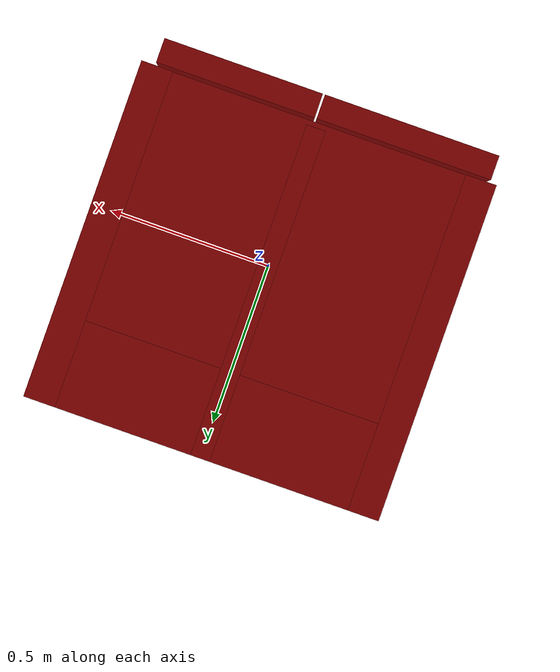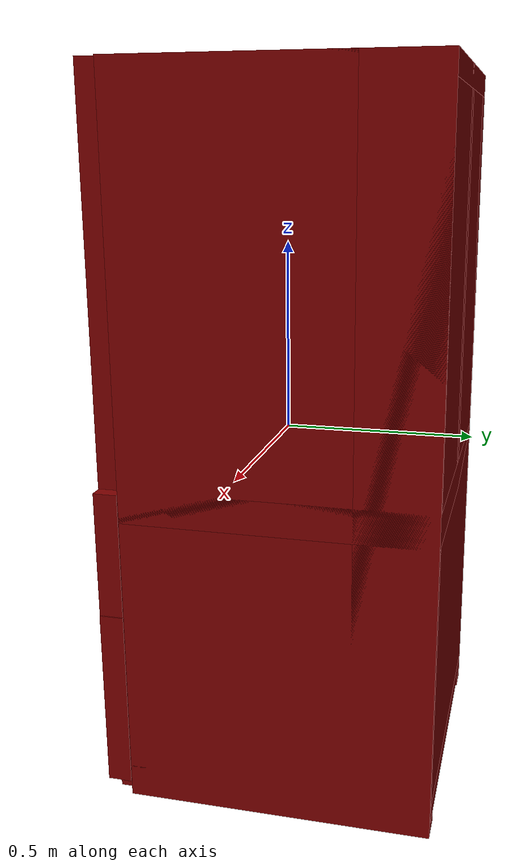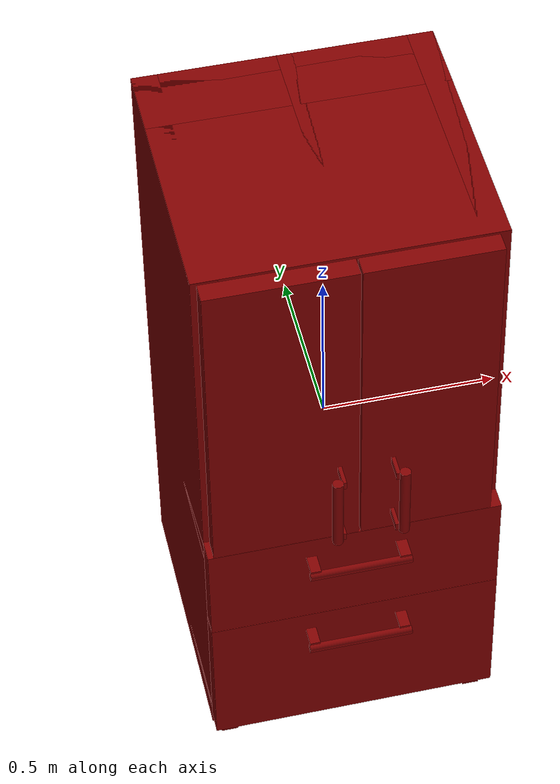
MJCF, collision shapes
<mujoco model="model">
  <compiler angle="radian"/>
  <asset>
    <mesh file="visuals/Body001.obj" name="Body001_vis"/>
    <mesh file="visuals/Body001_Clear.obj" name="Body001_Clear_vis"/>
    <mesh file="visuals/Door001.obj" name="Door001_vis"/>
    <mesh file="visuals/Door001_Clear.obj" name="Door001_Clear_vis"/>
    <mesh file="visuals/Door002.obj" name="Door002_vis"/>
    <mesh file="visuals/Door002_Clear.obj" name="Door002_Clear_vis"/>
    <mesh file="visuals/Drawer001.obj" name="Drawer001_vis"/>
    <mesh file="visuals/Drawer002.obj" name="Drawer002_vis"/>
    <texture file="visuals/T_BC001.png" name="Body001_material" type="2d"/>
    <material name="Body001_material" rgba="1 1 1 1.0" texture="Body001_material" shininess="0.141421377658844" specular="1"/>
    <texture file="visuals/T_BC001.png" name="Body001_Clear_material" type="2d"/>
    <material name="Body001_Clear_material" rgba="1 1 1 0.20258620381355286" texture="Body001_Clear_material" shininess="0.141421377658844" specular="0.3103448502657381"/>
    <texture file="visuals/T_BC001.png" name="Door001_material" type="2d"/>
    <material name="Door001_material" rgba="1 1 1 1.0" texture="Door001_material" shininess="0.141421377658844" specular="1"/>
    <texture file="visuals/T_BC001.png" name="Door001_Clear_material" type="2d"/>
    <material name="Door001_Clear_material" rgba="1 1 1 0.20258620381355286" texture="Door001_Clear_material" shininess="0.141421377658844" specular="0.3103448502657381"/>
    <texture file="visuals/T_BC001.png" name="Door002_material" type="2d"/>
    <material name="Door002_material" rgba="1 1 1 1.0" texture="Door002_material" shininess="0.141421377658844" specular="1"/>
    <texture file="visuals/T_BC001.png" name="Door002_Clear_material" type="2d"/>
    <material name="Door002_Clear_material" rgba="1 1 1 0.20258620381355286" texture="Door002_Clear_material" shininess="0.141421377658844" specular="0.3103448502657381"/>
    <texture file="visuals/T_BC001.png" name="Drawer001_material" type="2d"/>
    <material name="Drawer001_material" rgba="1 1 1 1.0" texture="Drawer001_material" shininess="0.141421377658844" specular="1"/>
    <texture file="visuals/T_BC001.png" name="Drawer002_material" type="2d"/>
    <material name="Drawer002_material" rgba="1 1 1 1.0" texture="Drawer002_material" shininess="0.141421377658844" specular="1"/>
  </asset>
  <default>
    <default class="visual">
      <geom conaffinity="0" contype="0" group="1" type="mesh"/>
    </default>
    <default class="collision">
      <geom group="0" rgba="0.5 0 0 0.5"/>
    </default>
    <default class="spawn">
      <geom group="0" rgba="1 1 1 0.5" contype="0" conaffinity="0"/>
      <site group="0" rgba="1 1 1 0.5"/>
    </default>
    <default class="region">
      <geom group="1" conaffinity="0" contype="0" rgba="0 1 0 0"/>
    </default>
  </default>
  <worldbody>
    <body>
      <body name="object">
        <geom mesh="Body001_vis" type="mesh" solimp="0.998 0.998 0.001" solref="0.001 1" density="100" friction="0.95 0.3 0.1" class="visual" material="Body001_material"/>
        <geom class="collision" type="box" pos="3.725290298461914e-08 0.36271440982818604 0.03870001435279846" size="0.420244961977005 0.10254697501659393 0.8938395977020264" quat="1.0 0.0 0.0 0.0"/>
        <geom class="collision" type="box" pos="-0.383768230676651 0.06786757707595825 5.960464477539063e-08" size="0.3973938226699829 0.03647679090499878 0.9325395822525024" quat="0.7071067094802856 0.0 0.0 0.7071068286895752"/>
        <geom class="collision" type="box" pos="2.421438694000244e-08 0.06850025057792664 0.903540849685669" size="0.420244961977005 0.3967611789703369 0.02899870276451111" quat="1.0 0.0 0.0 0.0"/>
        <geom class="collision" type="box" pos="0.38314831256866455 0.06786757707595825 5.960464477539063e-08" size="0.3973938226699829 0.03709670901298523 0.9325395822525024" quat="0.7071067094802856 0.0 0.0 0.7071068286895752"/>
        <geom class="collision" type="box" pos="2.421438694000244e-08 0.06850025057792664 -0.11745168268680573" size="0.420244961977005 0.3967611789703369 0.043764565140008926" quat="1.0 0.0 0.0 0.0"/>
        <geom class="collision" type="box" pos="0.002647663466632366 0.07413184642791748 0.4130184054374695" size="0.3911295533180237 0.022384162992239 0.5195212364196777" quat="0.7071067094802856 0.0 0.0 0.7071068286895752"/>
        <geom class="collision" type="box" pos="2.421438694000244e-08 0.06850025057792664 -0.8751527070999146" size="0.420244961977005 0.3967611789703369 0.028090566396713257" quat="1.0 0.0 0.0 0.0"/>
        <geom class="collision" type="box" pos="0.32959818840026855 -0.020736010745167732 0.5447321534156799" size="0.012320316396653652 0.25215694308280945 0.009214059449732304" quat="1.0 0.0 0.0 0.0"/>
        <geom class="collision" type="box" pos="0.03773929178714752 -0.020736010745167732 0.5447321534156799" size="0.012320316396653652 0.25215694308280945 0.009214059449732304" quat="1.0 0.0 0.0 0.0"/>
        <geom class="collision" type="box" pos="-0.03266625851392746 -0.020736010745167732 0.5447321534156799" size="0.012320316396653652 0.25215694308280945 0.009214059449732304" quat="1.0 0.0 0.0 0.0"/>
        <geom class="collision" type="box" pos="-0.3379121422767639 -0.020736010745167732 0.5447321534156799" size="0.012320316396653652 0.25215694308280945 0.009214059449732304" quat="1.0 0.0 0.0 0.0"/>
        <geom class="collision" type="box" pos="-0.3379121422767639 -0.020736010745167732 0.22500215470790863" size="0.012320316396653652 0.25215694308280945 0.009214059449732304" quat="1.0 0.0 0.0 0.0"/>
        <geom class="collision" type="box" pos="-0.03266625851392746 -0.020736010745167732 0.22500215470790863" size="0.012320316396653652 0.25215694308280945 0.009214059449732304" quat="1.0 0.0 0.0 0.0"/>
        <geom class="collision" type="box" pos="0.32959818840026855 -0.020736010745167732 0.2252790331840515" size="0.012320316396653652 0.25215694308280945 0.009214059449732304" quat="1.0 0.0 0.0 0.0"/>
        <geom class="collision" type="box" pos="0.03773929178714752 -0.020736010745167732 0.2252790331840515" size="0.012320316396653652 0.25215694308280945 0.009214059449732304" quat="1.0 0.0 0.0 0.0"/>
        <geom class="collision" type="box" pos="-0.3760225772857666 -0.35117390751838684 -0.9146504998207092" size="0.024222981184720993 0.021375611424446106 0.01788906380534172" quat="1.0 0.0 0.0 0.0"/>
        <geom class="collision" type="box" pos="0.36534348130226135 -0.35117390751838684 -0.9146504998207092" size="0.024222981184720993 0.021375611424446106 0.01788906380534172" quat="1.0 0.0 0.0 0.0"/>
        <body name="Body001_Clear">
          <geom mesh="Body001_Clear_vis" type="mesh" solimp="0.998 0.998 0.001" solref="0.001 1" density="100" friction="0.95 0.3 0.1" class="visual" material="Body001_Clear_material"/>
          <geom class="collision" type="box" pos="-0.0033921580761671066 -0.031038135290145874 0.5593169331550598" size="0.34316474199295044 0.2679133415222168 0.003984955605119467" quat="1.0 0.0 0.0 0.0"/>
          <geom class="collision" type="box" pos="-0.0033921580761671066 -0.04376785457134247 0.23902767896652222" size="0.34316474199295044 0.25471508502960205 0.003984955605119467" quat="1.0 0.0 0.0 0.0"/>
        </body>
        <body name="fridge_right_door">
          <joint axis="0.0 0.0 1.0" pos="0.3863397538661957 -0.3625793755054474 0.44345515966415405" limited="true" name="fridge_right_door_joint" range="0.0 1.5707963267948966" type="hinge" damping="1" frictionloss="1" armature=".01" stiffness="0.05"/>
          <geom mesh="Door001_vis" type="mesh" solimp="0.998 0.998 0.001" solref="0.001 1" density="100" friction="0.95 0.3 0.1" class="visual" material="Door001_material"/>
          <geom class="collision" type="cylinder" pos="0.12180572003126144 -0.45307570695877075 0.08398246765136719" size="0.015368785709142685 0.12188371270895004" quat="1.0 0.0 0.0 0.0"/>
          <geom class="collision" type="box" pos="0.10274607688188553 -0.4180055856704712 -0.022409191355109215" size="0.005391678307205439 0.03605390340089798 0.011779187247157097" quat="1.0 0.0 0.0 0.0"/>
          <geom class="collision" type="box" pos="0.10274607688188553 -0.4180055856704712 0.19212187826633453" size="0.005391678307205439 0.03605390340089798 0.01194847747683525" quat="1.0 0.0 0.0 0.0"/>
          <geom class="collision" type="box" pos="0.2007685614824295 -0.3652234971523285 0.42356622219085693" size="0.18724401426315308 0.028243105858564377 0.509591281414032" quat="1.0 0.0 0.0 0.0"/>
          <body name="Door001_Clear">
            <geom mesh="Door001_Clear_vis" type="mesh" solimp="0.998 0.998 0.001" solref="0.001 1" density="100" friction="0.95 0.3 0.1" class="visual" material="Door001_Clear_material"/>
            <geom class="collision" type="box" pos="0.22823141515254974 -0.31266695261001587 0.3187921941280365" size="0.10381898283958435 0.04666637256741524 0.004413849674165249" quat="1.0 0.0 0.0 0.0"/>
            <geom class="collision" type="box" pos="0.2293388545513153 -0.2715527415275574 0.36241352558135986" size="0.10466369241476059 0.0021701871883124113 0.04731038957834244" quat="0.9972224831581116 0.07448069751262665 0.0 0.0"/>
            <geom class="collision" type="box" pos="0.12630242109298706 -0.31493836641311646 0.36222249269485474" size="0.0022138787899166346 0.0426444411277771 0.04761907830834389" quat="1.0 0.0 0.0 0.0"/>
            <geom class="collision" type="box" pos="0.331939697265625 -0.31493836641311646 0.36222249269485474" size="0.0022138787899166346 0.0426444411277771 0.04761907830834389" quat="1.0 0.0 0.0 0.0"/>
            <geom class="collision" type="box" pos="0.2293388545513153 -0.35832902789115906 0.36222249269485474" size="0.10466369241476059 0.0018340981332585216 0.04761907830834389" quat="1.0 0.0 0.0 0.0"/>
            <geom class="collision" type="box" pos="0.2293388545513153 -0.35832902789115906 0.6658515930175781" size="0.10466369241476059 0.0018340981332585216 0.04761907830834389" quat="1.0 0.0 0.0 0.0"/>
            <geom class="collision" type="box" pos="0.331939697265625 -0.31493836641311646 0.6658515930175781" size="0.0022138787899166346 0.0426444411277771 0.04761907830834389" quat="1.0 0.0 0.0 0.0"/>
            <geom class="collision" type="box" pos="0.12630242109298706 -0.31493836641311646 0.6658515930175781" size="0.0022138787899166346 0.0426444411277771 0.04761907830834389" quat="1.0 0.0 0.0 0.0"/>
            <geom class="collision" type="box" pos="0.2293388545513153 -0.2715527415275574 0.6660426259040833" size="0.10466369241476059 0.0021701871883124113 0.04731038957834244" quat="0.9972224831581116 0.07448069751262665 0.0 0.0"/>
            <geom class="collision" type="box" pos="0.22823141515254974 -0.31266695261001587 0.6224212646484375" size="0.10381898283958435 0.04666637256741524 0.004413849674165249" quat="1.0 0.0 0.0 0.0"/>
          </body>
        </body>
        <body name="fridge_left_door">
          <joint axis="0.0 0.0 -1.0" pos="-0.3864901065826416 -0.3609431982040405 0.44345515966415405" limited="true" name="fridge_left_door_joint" range="0.0 1.5707963267948966" type="hinge" damping="1" frictionloss="1" armature=".01" stiffness="0.05"/>
          <geom mesh="Door002_vis" type="mesh" solimp="0.998 0.998 0.001" solref="0.001 1" density="100" friction="0.95 0.3 0.1" class="visual" material="Door002_material"/>
          <geom class="collision" type="box" pos="-0.046793416142463684 -0.4180055856704712 0.19212187826633453" size="0.005391678307205439 0.03605390340089798 0.01194847747683525" quat="1.0 0.0 0.0 0.0"/>
          <geom class="collision" type="box" pos="-0.046793416142463684 -0.4180055856704712 -0.022409191355109215" size="0.005391678307205439 0.03605390340089798 0.011779187247157097" quat="1.0 0.0 0.0 0.0"/>
          <geom class="collision" type="cylinder" pos="-0.0658530592918396 -0.45307570695877075 0.08398246765136719" size="0.015368785709142685 0.12188371270895004" quat="1.0 0.0 0.0 0.0"/>
          <geom class="collision" type="box" pos="-0.19788412749767303 -0.3652234673500061 0.4235662519931793" size="0.20616784691810608 0.028243105858564377 0.5095913410186768" quat="1.0 0.0 0.0 0.0"/>
          <body name="Door002_Clear">
            <geom mesh="Door002_Clear_vis" type="mesh" solimp="0.998 0.998 0.001" solref="0.001 1" density="100" friction="0.95 0.3 0.1" class="visual" material="Door002_Clear_material"/>
            <geom class="collision" type="box" pos="-0.19422337412834167 -0.35832902789115906 0.7967945337295532" size="0.13999596238136292 0.0018340981332585216 0.032336894422769547" quat="1.0 0.0 0.0 0.0"/>
            <geom class="collision" type="box" pos="-0.19533081352710724 -0.31266695261001587 0.7686464190483093" size="0.13915126025676727 0.04666637256741524 0.004413849674165249" quat="1.0 0.0 0.0 0.0"/>
            <geom class="collision" type="box" pos="-0.19422337412834167 -0.2726524770259857 0.7967945337295532" size="0.13999596238136292 0.0018340981332585216 0.032336894422769547" quat="0.9952298998832703 0.09755751490592957 0.0 0.0"/>
            <geom class="collision" type="box" pos="-0.33259207010269165 -0.31493836641311646 0.7967945337295532" size="0.0022138787899166346 0.0426444411277771 0.032336894422769547" quat="1.0 0.0 0.0 0.0"/>
            <geom class="collision" type="box" pos="-0.05629025772213936 -0.31493836641311646 0.7967945337295532" size="0.0022138787899166346 0.0426444411277771 0.032336894422769547" quat="1.0 0.0 0.0 0.0"/>
            <geom class="collision" type="box" pos="-0.19422337412834167 -0.35832902789115906 0.44336405396461487" size="0.13999596238136292 0.0018340981332585216 0.032336894422769547" quat="1.0 0.0 0.0 0.0"/>
            <geom class="collision" type="box" pos="-0.05629025772213936 -0.31493836641311646 0.44336405396461487" size="0.0022138787899166346 0.0426444411277771 0.032336894422769547" quat="1.0 0.0 0.0 0.0"/>
            <geom class="collision" type="box" pos="-0.33259207010269165 -0.31493836641311646 0.44336405396461487" size="0.0022138787899166346 0.0426444411277771 0.032336894422769547" quat="1.0 0.0 0.0 0.0"/>
            <geom class="collision" type="box" pos="-0.19422337412834167 -0.2726524770259857 0.44336405396461487" size="0.13999596238136292 0.0018340981332585216 0.032336894422769547" quat="0.9952298998832703 0.09755751490592957 0.0 0.0"/>
            <geom class="collision" type="box" pos="-0.19533081352710724 -0.31266695261001587 0.41521593928337097" size="0.13915126025676727 0.04666637256741524 0.004413849674165249" quat="1.0 0.0 0.0 0.0"/>
          </body>
        </body>
        <body name="freezer1">
          <joint axis="0.0 -1.0 0.0" pos="-0.0002827136777341366 -0.10345551371574402 -0.2524600028991699" limited="true" name="freezer1_door_joint" range="0.0 0.5" type="slide" damping="1" frictionloss="1" armature=".01" stiffness="0.05"/>
          <geom mesh="Drawer001_vis" type="mesh" solimp="0.998 0.998 0.001" solref="0.001 1" density="100" friction="0.95 0.3 0.1" class="visual" material="Drawer001_material"/>
          <geom class="collision" type="box" pos="0.13133274018764496 -0.41574499011039734 -0.16297851502895355" size="0.0346040278673172 0.015792381018400192 0.00388008332811296" quat="0.7071067094802856 0.0 0.0 0.7071068286895752"/>
          <geom class="collision" type="box" pos="-0.1272403597831726 -0.41574499011039734 -0.16297851502895355" size="0.0346040278673172 0.01491144672036171 0.00388008332811296" quat="0.7071067094802856 0.0 0.0 0.7071068286895752"/>
          <geom class="collision" type="cylinder" pos="0.0023994995281100273 -0.44855526089668274 -0.17801834642887115" size="0.012515487149357796 0.14645937085151672" quat="0.7071068286895752 -0.0 0.7071067690849304 0.0"/>
          <geom class="collision" type="box" pos="0.0007342882454395294 -0.0365728922188282 -0.35785308480262756" size="0.33688658475875854 0.28821972012519836 0.003502761712297797" quat="1.0 0.0 0.0 0.0"/>
          <geom class="collision" type="box" pos="0.33268946409225464 -0.03697865828871727 -0.27170833945274353" size="0.0035717864520847797 0.2878139615058899 0.08811507374048233" quat="1.0 0.0 0.0 0.0"/>
          <geom class="collision" type="box" pos="0.00012455659452825785 0.2496434450149536 -0.2691609263420105" size="0.33503541350364685 0.006157455500215292 0.08569752424955368" quat="1.0 0.0 0.0 0.0"/>
          <geom class="collision" type="box" pos="-0.33419832587242126 -0.03697865828871727 -0.27170833945274353" size="0.003375682048499584 0.2878139615058899 0.08811507374048233" quat="1.0 0.0 0.0 0.0"/>
          <geom class="collision" type="box" pos="5.960464477539063e-08 -0.3627449870109558 -0.25261422991752625" size="0.4202449917793274 0.031092511489987373 0.16448312997817993" quat="1.0 0.0 0.0 0.0"/>
          <geom class="region" name="reg_freezer1" type="box" pos="0.005 -0.03 -0.26" size="0.31 0.24 0.09"/>
        </body>
        <body name="freezer0">
          <joint axis="0.0 -1.0 0.0" pos="0.0007861773483455181 -0.1080847829580307 -0.6571972370147705" limited="true" name="freezer0_door_joint" range="0.0 0.5" type="slide" damping="1" frictionloss="1" armature=".01" stiffness="0.05"/>
          <geom mesh="Drawer002_vis" type="mesh" solimp="0.998 0.998 0.001" solref="0.001 1" density="100" friction="0.95 0.3 0.1" class="visual" material="Drawer002_material"/>
          <geom class="collision" type="box" pos="5.960464477539063e-08 -0.36322179436683655 -0.6571394801139832" size="0.4202449917793274 0.03156930208206177 0.23801931738853455" quat="1.0 0.0 0.0 0.0"/>
          <geom class="collision" type="box" pos="-0.3265295922756195 -0.03776751458644867 -0.6844683885574341" size="0.005799839738756418 0.2870250940322876 0.15341652929782867" quat="1.0 0.0 0.0 0.0"/>
          <geom class="collision" type="box" pos="0.00012455659452825785 0.2432796210050583 -0.6819210052490234" size="0.33503541350364685 0.006157455500215292 0.15099896490573883" quat="1.0 0.0 0.0 0.0"/>
          <geom class="collision" type="box" pos="0.3293297588825226 -0.03776751458644867 -0.6844683885574341" size="0.005709765013307333 0.2870250940322876 0.15341652929782867" quat="1.0 0.0 0.0 0.0"/>
          <geom class="collision" type="box" pos="0.0007342882454395294 -0.0365728922188282 -0.8359146118164062" size="0.33688658475875854 0.28821972012519836 0.003502761712297797" quat="1.0 0.0 0.0 0.0"/>
          <geom class="collision" type="cylinder" pos="0.0024487851187586784 -0.45155343413352966 -0.5024803876876831" size="0.012515487149357796 0.15056449174880981" quat="0.7071068286895752 -0.0 0.7071067690849304 0.0"/>
          <geom class="collision" type="box" pos="-0.13126640021800995 -0.41574499011039734 -0.48698410391807556" size="0.0346040278673172 0.01491144672036171 0.00388008332811296" quat="0.7071067094802856 0.0 0.0 0.7071068286895752"/>
          <geom class="collision" type="box" pos="0.13468211889266968 -0.41574499011039734 -0.48698410391807556" size="0.0346040278673172 0.015792381018400192 0.00388008332811296" quat="0.7071067094802856 0.0 0.0 0.7071068286895752"/>
          <geom class="region" name="reg_freezer0" type="box" pos="0.005 -0.03 -0.63" size="0.31 0.24 0.20"/>
        </body>
        <geom class="region" name="reg_main" type="box" pos="-7.450580596923828e-09 0.03558003902435303 0.0" size="0.432 0.42968136072158813 0.938"/>
        <geom class="region" name="reg_fridge_left_shelf0" type="box" pos="-0.185 -0.025 0.075" size="0.155 0.22 0.145"/>
        <geom class="region" name="reg_fridge_right_shelf0" type="box" pos="0.185 -0.025 0.075" size="0.15 0.22 0.145"/>
        <geom class="region" name="reg_fridge_left_shelf1" type="box" pos="-0.185 -0.025 0.395" size="0.155 0.22 0.15"/>
        <geom class="region" name="reg_fridge_right_shelf1" type="box" pos="0.185 -0.025 0.395" size="0.15 0.22 0.15"/>
        <geom class="region" name="reg_fridge_left_shelf2" type="box" pos="-0.185 -0.025 0.715" size="0.155 0.22 0.15"/>
        <geom class="region" name="reg_fridge_right_shelf2" type="box" pos="0.185 -0.025 0.715" size="0.15 0.22 0.15"/>
      </body>
    </body>
  </worldbody>
  <actuator>
    <motor name="fridge_right_door_joint_actuator" joint="fridge_right_door_joint" gear="50"/>
    <motor name="fridge_left_door_joint_actuator" joint="fridge_left_door_joint" gear="50"/>
    <motor name="freezer1_door_joint_actuator" joint="freezer1_door_joint" gear="50"/>
    <motor name="freezer0_door_joint_actuator" joint="freezer0_door_joint" gear="50"/>
  </actuator>
</mujoco>
